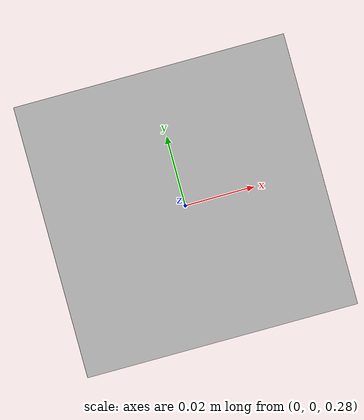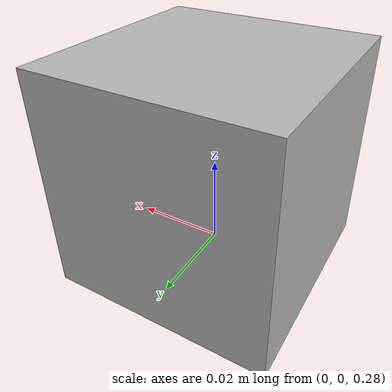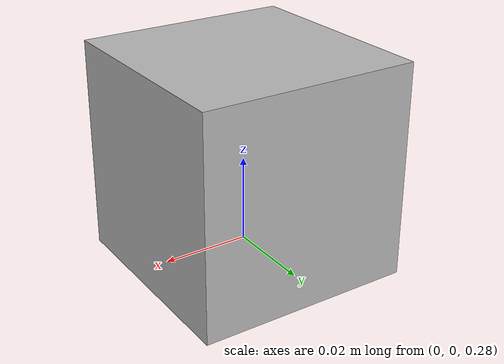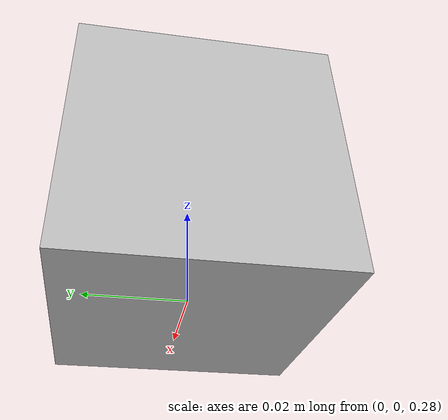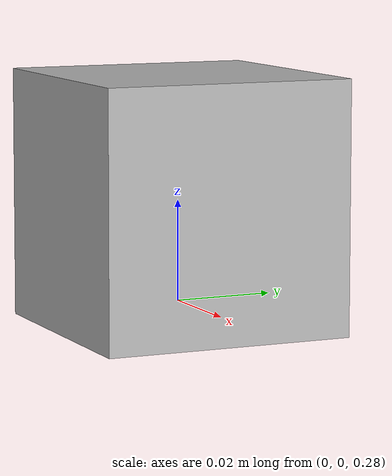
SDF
<?xml version='1.0'?>
<sdf version='1.7'>
  <model name='box'>
    <pose>0 0 0.3 0 0 0</pose>
    <link name='box'>
        <inertial>
          <mass>5.</mass>
          <inertia>
            <ixx>0.00208333333</ixx>
            <ixy>0</ixy>
            <ixz>0</ixz>
            <iyy>0.00208333333</iyy>
            <iyz>0</iyz>
            <izz>0.00208333333</izz>
          </inertia>
        </inertial>
      <visual name='box'>
        <geometry>
          <box>
            <size>0.05 0.05 0.05</size>
          </box>
        </geometry>
        <material/>
      </visual>
      <collision name='box'>
        <geometry>
          <box>
            <size>0.05 0.05 0.05</size>
          </box>
        </geometry>
      </collision>
    </link>
  </model>
</sdf>
